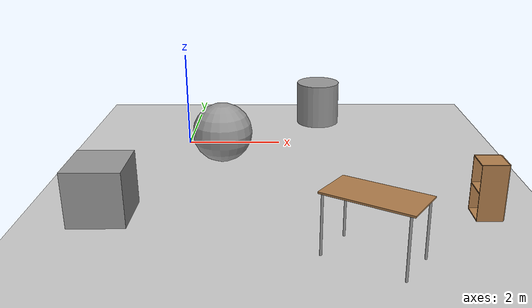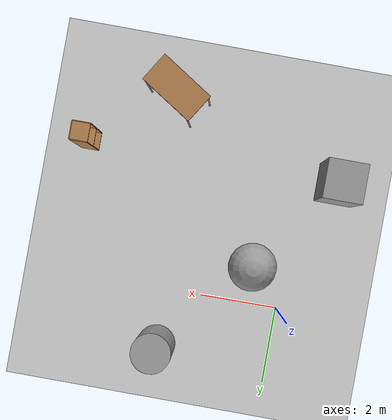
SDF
<sdf version="1.7">
 <world name="default">
  <light name="sun" type="directional">
   <pose>0 0 10 0 -0 0</pose>
   <diffuse>0.8 0.8 0.8 1</diffuse>
   <specular>0.2 0.2 0.2 1</specular>
   <attenuation>
    <range>1000</range>
    <constant>0.9</constant>
    <linear>0.01</linear>
    <quadratic>0.001</quadratic>
   </attenuation>
   <direction>-0.5 0.1 -0.9</direction>
   <spot><inner_angle>0</inner_angle><outer_angle>0</outer_angle><falloff>0</falloff></spot>
  </light>
  <model name="ground_plane">
   <static>1</static>
   <link name="link">
    <collision name="collision">
     <geometry><plane><normal>0 0 1</normal><size>100 100</size></plane></geometry>
     <surface>
      <contact><collide_bitmask>65535</collide_bitmask></contact>
      <friction><ode><mu>100</mu><mu2>50</mu2></ode></friction>
     </surface>
    </collision>
    <visual name="visual">
     <cast_shadows>0</cast_shadows>
     <geometry><plane><normal>0 0 1</normal><size>100 100</size></plane></geometry>
     <material>
      <script><uri>file://media/materials/scripts/gazebo.material</uri><name>Gazebo/Grey</name></script>
     </material>
    </visual>
   </link>
  </model>
  <gravity>0 0 -9.8</gravity>
  <magnetic_field>6e-06 2.3e-05 -4.2e-05</magnetic_field>
  <atmosphere type="adiabatic"/>
  <physics type="ode">
   <max_step_size>0.001</max_step_size>
   <real_time_factor>1</real_time_factor>
   <real_time_update_rate>1000</real_time_update_rate>
  </physics>
  <scene><ambient>0.4 0.4 0.4 1</ambient><background>0.7 0.7 0.7 1</background><shadows>1</shadows></scene>
  <spherical_coordinates>
   <surface_model>EARTH_WGS84</surface_model>
   <latitude_deg>0</latitude_deg>
   <longitude_deg>0</longitude_deg>
   <elevation>0</elevation>
   <heading_deg>0</heading_deg>
  </spherical_coordinates>
  <model name="unit_box">
   <pose>-0.991044 -3.48611 0.499995 0 1e-05 0</pose>
   <link name="link">
    <inertial>
     <mass>1</mass>
     <inertia>
      <ixx>0.166667</ixx>
      <ixy>0</ixy>
      <ixz>0</ixz>
      <iyy>0.166667</iyy>
      <iyz>0</iyz>
      <izz>0.166667</izz>
     </inertia>
    </inertial>
    <collision name="collision"><geometry><box><size>1 1 1</size></box></geometry></collision>
    <visual name="visual">
     <geometry><box><size>1 1 1</size></box></geometry>
     <material>
      <script><name>Gazebo/Grey</name><uri>file://media/materials/scripts/gazebo.material</uri></script>
     </material>
    </visual>
   </link>
  </model>
  <model name="unit_sphere">
   <pose>0.843539 -0.999392 0.612458 0 -0 0</pose>
   <link name="link">
    <inertial>
     <mass>1</mass>
     <inertia><ixx>0.1</ixx><ixy>0</ixy><ixz>0</ixz><iyy>0.1</iyy><iyz>0</iyz><izz>0.1</izz></inertia>
    </inertial>
    <collision name="collision"><geometry><sphere><radius>0.61246</radius></sphere></geometry></collision>
    <visual name="visual">
     <geometry><sphere><radius>0.61246</radius></sphere></geometry>
     <material>
      <script><name>Gazebo/Grey</name><uri>file://media/materials/scripts/gazebo.material</uri></script>
     </material>
    </visual>
   </link>
  </model>
  <model name="unit_cylinder">
   <pose>2.9404 1.48085 0.499996 4e-06 4e-06 -0</pose>
   <link name="link">
    <inertial>
     <mass>1</mass>
     <inertia><ixx>0.145833</ixx><ixy>0</ixy><ixz>0</ixz><iyy>0.145833</iyy><iyz>0</iyz><izz>0.125</izz></inertia>
    </inertial>
    <collision name="collision">
     <geometry><cylinder><radius>0.5</radius><length>1</length></cylinder></geometry>
    </collision>
    <visual name="visual">
     <geometry><cylinder><radius>0.5</radius><length>1</length></cylinder></geometry>
     <material>
      <script><name>Gazebo/Grey</name><uri>file://media/materials/scripts/gazebo.material</uri></script>
     </material>
    </visual>
   </link>
  </model>
  <model name="table">
   <static>1</static>
   <link name="link">
    <collision name="surface">
     <pose>0 0 1 0 -0 0</pose>
     <geometry><box><size>1.5 0.8 0.03</size></box></geometry>
     <surface><friction><ode><mu>0.6</mu><mu2>0.6</mu2></ode></friction></surface>
    </collision>
    <visual name="visual1">
     <pose>0 0 1 0 -0 0</pose>
     <geometry><box><size>1.5 0.8 0.03</size></box></geometry>
     <material>
      <script><uri>file://media/materials/scripts/gazebo.material</uri><name>Gazebo/Wood</name></script>
     </material>
    </visual>
    <collision name="front_left_leg">
     <pose>0.68 0.38 0.5 0 -0 0</pose>
     <geometry><cylinder><radius>0.02</radius><length>1</length></cylinder></geometry>
    </collision>
    <visual name="front_left_leg">
     <pose>0.68 0.38 0.5 0 -0 0</pose>
     <geometry><cylinder><radius>0.02</radius><length>1</length></cylinder></geometry>
     <material>
      <script><uri>file://media/materials/scripts/gazebo.material</uri><name>Gazebo/Grey</name></script>
     </material>
    </visual>
    <collision name="front_right_leg">
     <pose>0.68 -0.38 0.5 0 -0 0</pose>
     <geometry><cylinder><radius>0.02</radius><length>1</length></cylinder></geometry>
    </collision>
    <visual name="front_right_leg">
     <pose>0.68 -0.38 0.5 0 -0 0</pose>
     <geometry><cylinder><radius>0.02</radius><length>1</length></cylinder></geometry>
     <material>
      <script><uri>file://media/materials/scripts/gazebo.material</uri><name>Gazebo/Grey</name></script>
     </material>
    </visual>
    <collision name="back_right_leg">
     <pose>-0.68 -0.38 0.5 0 -0 0</pose>
     <geometry><cylinder><radius>0.02</radius><length>1</length></cylinder></geometry>
    </collision>
    <visual name="back_right_leg">
     <pose>-0.68 -0.38 0.5 0 -0 0</pose>
     <geometry><cylinder><radius>0.02</radius><length>1</length></cylinder></geometry>
     <material>
      <script><uri>file://media/materials/scripts/gazebo.material</uri><name>Gazebo/Grey</name></script>
     </material>
    </visual>
    <collision name="back_left_leg">
     <pose>-0.68 0.38 0.5 0 -0 0</pose>
     <geometry><cylinder><radius>0.02</radius><length>1</length></cylinder></geometry>
    </collision>
    <visual name="back_left_leg">
     <pose>-0.68 0.38 0.5 0 -0 0</pose>
     <geometry><cylinder><radius>0.02</radius><length>1</length></cylinder></geometry>
     <material>
      <script><uri>file://media/materials/scripts/gazebo.material</uri><name>Gazebo/Grey</name></script>
     </material>
    </visual>
   </link>
   <pose>3.43361 -5 0.075355 -0.040942 -0.013701 -0.568837</pose>
  </model>
  <model name="cabinet">
   <static>1</static>
   <link name="cabinet_bottom_plate">
    <inertial>
     <pose>0 0 -1 0 -0 0</pose>
     <inertia><ixx>2.05</ixx><ixy>0</ixy><ixz>0</ixz><iyy>2.05</iyy><iyz>0</iyz><izz>2.05</izz></inertia>
     <mass>25</mass>
    </inertial>
    <collision name="cabinet_bottom_plate_geom">
     <pose>0 0 0.01 0 -0 0</pose>
     <geometry><box><size>0.45 0.45 0.02</size></box></geometry>
    </collision>
    <visual name="cabinet_bottom_plate_geom_visual">
     <pose>0 0 0.01 0 -0 0</pose>
     <geometry><box><size>0.45 0.45 0.02</size></box></geometry>
     <material>
      <script><uri>file://media/materials/scripts/gazebo.material</uri><name>Gazebo/Wood</name></script>
     </material>
    </visual>
    <collision name="cabinet_bottom_plate_geom_cabinet_back_plate">
     <pose>0.235 0 0.51 0 -0 0</pose>
     <geometry><box><size>0.02 0.45 1.02</size></box></geometry>
    </collision>
    <visual name="cabinet_bottom_plate_geom_cabinet_back_plate_visual">
     <pose>0.235 0 0.51 0 -0 0</pose>
     <geometry><box><size>0.02 0.45 1.02</size></box></geometry>
     <material>
      <script><uri>file://media/materials/scripts/gazebo.material</uri><name>Gazebo/Wood</name></script>
     </material>
    </visual>
    <collision name="cabinet_bottom_plate_geom_cabinet_left_plate">
     <pose>0 0.235 0.51 0 -0 0</pose>
     <geometry><box><size>0.45 0.02 1.02</size></box></geometry>
    </collision>
    <visual name="cabinet_bottom_plate_geom_cabinet_left_plate_visual">
     <pose>0 0.235 0.51 0 -0 0</pose>
     <geometry><box><size>0.45 0.02 1.02</size></box></geometry>
     <material>
      <script><uri>file://media/materials/scripts/gazebo.material</uri><name>Gazebo/Wood</name></script>
     </material>
    </visual>
    <collision name="cabinet_bottom_plate_geom_cabinet_middle_plate">
     <pose>0 0 0.51 0 -0 0</pose>
     <geometry><box><size>0.45 0.45 0.02</size></box></geometry>
    </collision>
    <visual name="cabinet_bottom_plate_geom_cabinet_middle_plate_visual">
     <pose>0 0 0.51 0 -0 0</pose>
     <geometry><box><size>0.45 0.45 0.02</size></box></geometry>
     <material>
      <script><uri>file://media/materials/scripts/gazebo.material</uri><name>Gazebo/Wood</name></script>
     </material>
    </visual>
    <collision name="cabinet_bottom_plate_geom_cabinet_right_plate">
     <pose>0 -0.235 0.51 0 -0 0</pose>
     <geometry><box><size>0.45 0.02 1.02</size></box></geometry>
    </collision>
    <visual name="cabinet_bottom_plate_geom_cabinet_right_plate_visual">
     <pose>0 -0.235 0.51 0 -0 0</pose>
     <geometry><box><size>0.45 0.02 1.02</size></box></geometry>
     <material>
      <script><uri>file://media/materials/scripts/gazebo.material</uri><name>Gazebo/Wood</name></script>
     </material>
    </visual>
    <collision name="cabinet_bottom_plate_geom_cabinet_top_plate">
     <pose>0 0 1.01 0 -0 0</pose>
     <geometry><box><size>0.45 0.45 0.02</size></box></geometry>
    </collision>
    <visual name="cabinet_bottom_plate_geom_cabinet_top_plate_visual">
     <pose>0 0 1.01 0 -0 0</pose>
     <geometry><box><size>0.45 0.45 0.02</size></box></geometry>
     <material>
      <script><uri>file://media/materials/scripts/gazebo.material</uri><name>Gazebo/Wood</name></script>
     </material>
    </visual>
   </link>
   <pose>5.57165 -3.52505 0 0 -0 0</pose>
  </model>
 </world>
</sdf>
